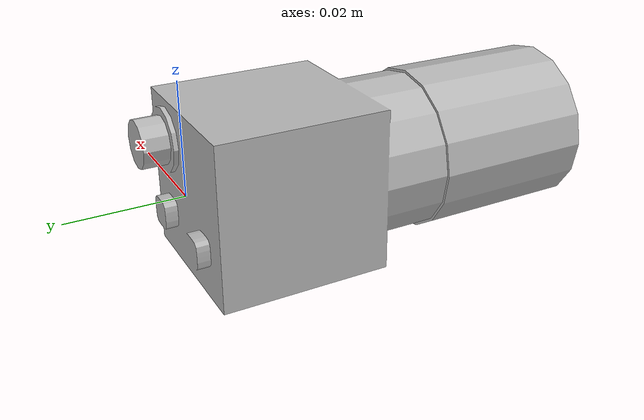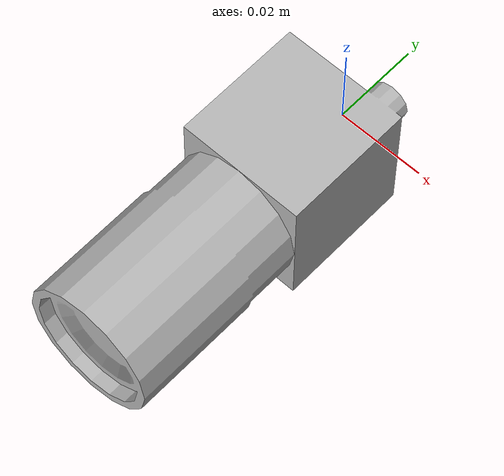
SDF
<?xml version='1.0' ?>
<sdf version='1.6'>
  <model name='mono_camera'>
    <static>true</static>
    <link name='link'>
      <collision name='collision'>
        <geometry>
          <mesh>
            <uri>model://mono_camera/meshes/mono_camera.dae</uri>
          </mesh>
        </geometry>
      </collision>
      <visual name='visual'>
        <geometry>
          <mesh>
            <uri>model://mono_camera/meshes/mono_camera.dae</uri>
          </mesh>
        </geometry>
      </visual>
    </link>
  </model>
</sdf>
